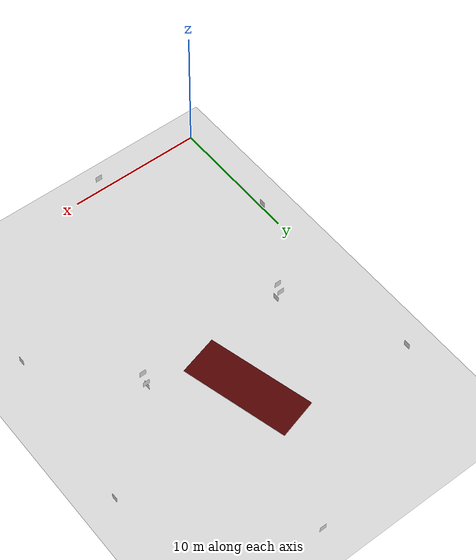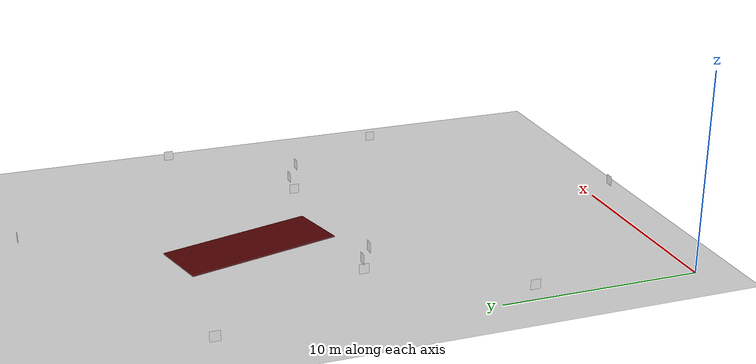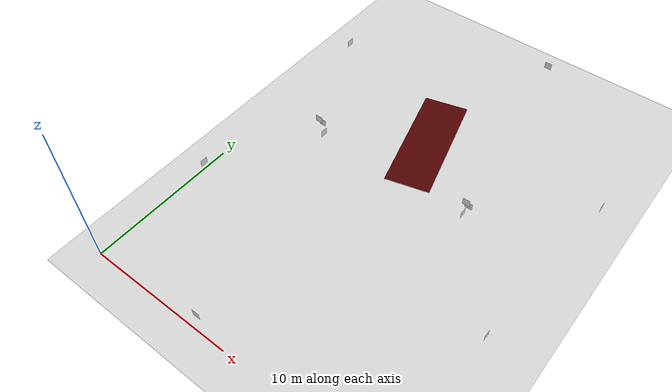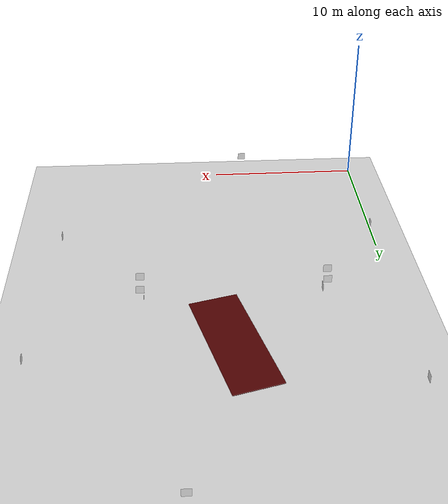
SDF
<sdf version="1.6">
 <world name="default">
  <light name="sun" type="directional">
   <pose>0 0 10 0 -0 0</pose>
   <diffuse>0.8 0.8 0.8 1</diffuse>
   <specular>0.1 0.1 0.1 1</specular>
   <attenuation>
    <range>1000</range>
    <constant>0.9</constant>
    <linear>0.01</linear>
    <quadratic>0.001</quadratic>
   </attenuation>
   <direction>-0.5 0.5 -1</direction>
  </light>
  <model name="ground_plane">
   <static>1</static>
   <link name="link">
    <collision name="collision">
     <geometry><plane><normal>0 0 1</normal><size>100 100</size></plane></geometry>
     <surface><friction><ode><mu>100</mu><mu2>50</mu2></ode></friction></surface>
    </collision>
    <visual name="visual">
     <cast_shadows>0</cast_shadows>
     <geometry><plane><normal>0 0 1</normal><size>100 100</size></plane></geometry>
     <material>
      <script><uri>file://media/materials/scripts/gazebo.material</uri><name>Gazebo/Grey</name></script>
     </material>
    </visual>
   </link>
  </model>
  <gravity>0 0 -9.8</gravity>
  <magnetic_field>6e-06 2.3e-05 -4.2e-05</magnetic_field>
  <atmosphere type="adiabatic"/>
  <physics name="default_physics" default="0" type="ode">
   <max_step_size>0.001</max_step_size>
   <real_time_factor>1</real_time_factor>
   <real_time_update_rate>1000</real_time_update_rate>
  </physics>
  <scene><ambient>0.4 0.4 0.4 1</ambient><background>0.7 0.7 0.7 1</background><shadows>1</shadows></scene>
  <spherical_coordinates>
   <surface_model>EARTH_WGS84</surface_model>
   <latitude_deg>0</latitude_deg>
   <longitude_deg>0</longitude_deg>
   <elevation>0</elevation>
   <heading_deg>0</heading_deg>
  </spherical_coordinates>
  <model name="aruco_visual_marker_0">
   <link name="marker">
    <visual name="visual">
     <geometry><box><size>0.5 0.5 1e-05</size></box></geometry>
     <material>
      <script>
       <uri>model://aruco_visual_marker_0/materials/scripts</uri>
       <uri>model://aruco_visual_marker_0/materials/textures</uri>
       <name>ArucoVisualMarker0/Marker</name>
      </script>
      <ambient>1 1 1 1</ambient>
      <diffuse>1 1 1 1</diffuse>
      <specular>0 0 0 1</specular>
      <emissive>1 1 1 0</emissive>
      <shader type="vertex"><normal_map>__default__</normal_map></shader>
     </material>
    </visual>
    <collision name="collision"><geometry><box><size>0.5 0.5 1e-05</size></box></geometry></collision>
   </link>
   <link name="marker_pad">
    <pose frame="marker">0 0 -1e-05 0 -0 0</pose>
    <visual name="visual">
     <geometry><box><size>1e-05 1e-05 1e-05</size></box></geometry>
     <material>
      <lighting>1</lighting>
      <script><uri>file://media/materials/scripts/gazebo.material</uri><name>Gazebo/White</name></script>
      <ambient>0.3 0.3 0.3 1</ambient>
      <diffuse>0.7 0.7 0.7 1</diffuse>
      <specular>0.01 0.01 0.01 1</specular>
      <emissive>1 1 1 0</emissive>
      <shader type="vertex"><normal_map>__default__</normal_map></shader>
     </material>
    </visual>
    <collision name="collision"><geometry><box><size>0.5 0.5 1e-05</size></box></geometry></collision>
   </link>
   <joint name="marker_JOINT_marker_pad" type="revolute">
    <parent>marker</parent>
    <child>marker_pad</child>
    <axis>
     <xyz>0 0 1</xyz>
     <limit><upper>0</upper><lower>0</lower></limit>
     <use_parent_model_frame>0</use_parent_model_frame>
     <dynamics><spring_reference>0</spring_reference><spring_stiffness>0</spring_stiffness></dynamics>
    </axis>
   </joint>
   <static>1</static>
   <pose>8.15376 0.164558 1.62223 1.57079 -1.57079 3.14159</pose>
  </model>
  <model name="aruco_visual_marker_1">
   <link name="marker">
    <visual name="visual">
     <geometry><box><size>0.5 0.5 1e-05</size></box></geometry>
     <material>
      <script>
       <uri>model://aruco_visual_marker_1/materials/scripts</uri>
       <uri>model://aruco_visual_marker_1/materials/textures</uri>
       <name>ArucoVisualMarker1/Marker</name>
      </script>
      <ambient>1 1 1 1</ambient>
      <diffuse>1 1 1 1</diffuse>
      <specular>0 0 0 1</specular>
      <emissive>1 1 1 0</emissive>
      <shader type="vertex"><normal_map>__default__</normal_map></shader>
     </material>
    </visual>
    <collision name="collision"><geometry><box><size>0.5 0.5 1e-05</size></box></geometry></collision>
   </link>
   <link name="marker_pad">
    <pose frame="marker">0 0 -1e-05 0 -0 0</pose>
    <visual name="visual">
     <geometry><box><size>1e-05 1e-05 1e-05</size></box></geometry>
     <material>
      <lighting>1</lighting>
      <script><uri>file://media/materials/scripts/gazebo.material</uri><name>Gazebo/White</name></script>
      <ambient>0.3 0.3 0.3 1</ambient>
      <diffuse>0.7 0.7 0.7 1</diffuse>
      <specular>0.01 0.01 0.01 1</specular>
      <emissive>1 1 1 0</emissive>
      <shader type="vertex"><normal_map>__default__</normal_map></shader>
     </material>
    </visual>
    <collision name="collision"><geometry><box><size>0.5 0.5 1e-05</size></box></geometry></collision>
   </link>
   <joint name="marker_JOINT_marker_pad" type="revolute">
    <parent>marker</parent>
    <child>marker_pad</child>
    <axis>
     <xyz>0 0 1</xyz>
     <limit><upper>0</upper><lower>0</lower></limit>
     <use_parent_model_frame>0</use_parent_model_frame>
     <dynamics><spring_reference>0</spring_reference><spring_stiffness>0</spring_stiffness></dynamics>
    </axis>
   </joint>
   <static>1</static>
   <pose>20.5402 8.87369 0.783528 -3.14159 -1.57079 -3.14159</pose>
  </model>
  <model name="aruco_visual_marker_2">
   <link name="marker">
    <visual name="visual">
     <geometry><box><size>0.5 0.5 1e-05</size></box></geometry>
     <material>
      <script>
       <uri>model://aruco_visual_marker_2/materials/scripts</uri>
       <uri>model://aruco_visual_marker_2/materials/textures</uri>
       <name>ArucoVisualMarker2/Marker</name>
      </script>
      <ambient>1 1 1 1</ambient>
      <diffuse>1 1 1 1</diffuse>
      <specular>0 0 0 1</specular>
      <emissive>1 1 1 0</emissive>
      <shader type="vertex"><normal_map>__default__</normal_map></shader>
     </material>
    </visual>
    <collision name="collision"><geometry><box><size>0.5 0.5 1e-05</size></box></geometry></collision>
   </link>
   <link name="marker_pad">
    <pose frame="marker">0 0 -1e-05 0 -0 0</pose>
    <visual name="visual">
     <geometry><box><size>1e-05 1e-05 1e-05</size></box></geometry>
     <material>
      <lighting>1</lighting>
      <script><uri>file://media/materials/scripts/gazebo.material</uri><name>Gazebo/White</name></script>
      <ambient>0.3 0.3 0.3 1</ambient>
      <diffuse>0.7 0.7 0.7 1</diffuse>
      <specular>0.01 0.01 0.01 1</specular>
      <emissive>1 1 1 0</emissive>
      <shader type="vertex"><normal_map>__default__</normal_map></shader>
     </material>
    </visual>
    <collision name="collision"><geometry><box><size>0.5 0.5 1e-05</size></box></geometry></collision>
   </link>
   <joint name="marker_JOINT_marker_pad" type="revolute">
    <parent>marker</parent>
    <child>marker_pad</child>
    <axis>
     <xyz>0 0 1</xyz>
     <limit><upper>0</upper><lower>0</lower></limit>
     <use_parent_model_frame>0</use_parent_model_frame>
     <dynamics><spring_reference>0</spring_reference><spring_stiffness>0</spring_stiffness></dynamics>
    </axis>
   </joint>
   <static>1</static>
   <pose>4.40399 15.0522 0.644692 -3e-06 -1.57079 3.14159</pose>
  </model>
  <model name="aruco_visual_marker_3">
   <link name="marker">
    <visual name="visual">
     <geometry><box><size>0.5 0.5 1e-05</size></box></geometry>
     <material>
      <script>
       <uri>model://aruco_visual_marker_3/materials/scripts</uri>
       <uri>model://aruco_visual_marker_3/materials/textures</uri>
       <name>ArucoVisualMarker3/Marker</name>
      </script>
      <ambient>1 1 1 1</ambient>
      <diffuse>1 1 1 1</diffuse>
      <specular>0 0 0 1</specular>
      <emissive>1 1 1 0</emissive>
      <shader type="vertex"><normal_map>__default__</normal_map></shader>
     </material>
    </visual>
    <collision name="collision"><geometry><box><size>0.5 0.5 1e-05</size></box></geometry></collision>
   </link>
   <link name="marker_pad">
    <pose frame="marker">0 0 -1e-05 0 -0 0</pose>
    <visual name="visual">
     <geometry><box><size>1e-05 1e-05 1e-05</size></box></geometry>
     <material>
      <lighting>1</lighting>
      <script><uri>file://media/materials/scripts/gazebo.material</uri><name>Gazebo/White</name></script>
      <ambient>0.3 0.3 0.3 1</ambient>
      <diffuse>0.7 0.7 0.7 1</diffuse>
      <specular>0.01 0.01 0.01 1</specular>
      <emissive>1 1 1 0</emissive>
      <shader type="vertex"><normal_map>__default__</normal_map></shader>
     </material>
    </visual>
    <collision name="collision"><geometry><box><size>0.5 0.5 1e-05</size></box></geometry></collision>
   </link>
   <joint name="marker_JOINT_marker_pad" type="revolute">
    <parent>marker</parent>
    <child>marker_pad</child>
    <axis>
     <xyz>0 0 1</xyz>
     <limit><upper>0</upper><lower>0</lower></limit>
     <use_parent_model_frame>0</use_parent_model_frame>
     <dynamics><spring_reference>0</spring_reference><spring_stiffness>0</spring_stiffness></dynamics>
    </axis>
   </joint>
   <static>1</static>
   <pose>12.9422 29.8823 0.785652 -1.57554 -1.57079 -3.13686</pose>
  </model>
  <model name="aruco_visual_marker_4">
   <link name="marker">
    <visual name="visual">
     <geometry><box><size>0.5 0.5 1e-05</size></box></geometry>
     <material>
      <script>
       <uri>model://aruco_visual_marker_4/materials/scripts</uri>
       <uri>model://aruco_visual_marker_4/materials/textures</uri>
       <name>ArucoVisualMarker4/Marker</name>
      </script>
      <ambient>1 1 1 1</ambient>
      <diffuse>1 1 1 1</diffuse>
      <specular>0 0 0 1</specular>
      <emissive>1 1 1 0</emissive>
      <shader type="vertex"><normal_map>__default__</normal_map></shader>
     </material>
    </visual>
    <collision name="collision"><geometry><box><size>0.5 0.5 1e-05</size></box></geometry></collision>
   </link>
   <link name="marker_pad">
    <pose frame="marker">0 0 -1e-05 0 -0 0</pose>
    <visual name="visual">
     <geometry><box><size>1e-05 1e-05 1e-05</size></box></geometry>
     <material>
      <lighting>1</lighting>
      <script><uri>file://media/materials/scripts/gazebo.material</uri><name>Gazebo/White</name></script>
      <ambient>0.3 0.3 0.3 1</ambient>
      <diffuse>0.7 0.7 0.7 1</diffuse>
      <specular>0.01 0.01 0.01 1</specular>
      <emissive>1 1 1 0</emissive>
      <shader type="vertex"><normal_map>__default__</normal_map></shader>
     </material>
    </visual>
    <collision name="collision"><geometry><box><size>0.5 0.5 1e-05</size></box></geometry></collision>
   </link>
   <joint name="marker_JOINT_marker_pad" type="revolute">
    <parent>marker</parent>
    <child>marker_pad</child>
    <axis>
     <xyz>0 0 1</xyz>
     <limit><upper>0</upper><lower>0</lower></limit>
     <use_parent_model_frame>0</use_parent_model_frame>
     <dynamics><spring_reference>0</spring_reference><spring_stiffness>0</spring_stiffness></dynamics>
    </axis>
   </joint>
   <static>1</static>
   <pose>0.149435 23.2488 0.777007 -3e-06 -1.57079 3.14159</pose>
  </model>
  <model name="aruco_visual_marker_5">
   <link name="marker">
    <visual name="visual">
     <geometry><box><size>0.5 0.5 1e-05</size></box></geometry>
     <material>
      <script>
       <uri>model://aruco_visual_marker_5/materials/scripts</uri>
       <uri>model://aruco_visual_marker_5/materials/textures</uri>
       <name>ArucoVisualMarker5/Marker</name>
      </script>
      <ambient>1 1 1 1</ambient>
      <diffuse>1 1 1 1</diffuse>
      <specular>0 0 0 1</specular>
      <emissive>1 1 1 0</emissive>
      <shader type="vertex"><normal_map>__default__</normal_map></shader>
     </material>
    </visual>
    <collision name="collision"><geometry><box><size>0.5 0.5 1e-05</size></box></geometry></collision>
   </link>
   <link name="marker_pad">
    <pose frame="marker">0 0 -1e-05 0 -0 0</pose>
    <visual name="visual">
     <geometry><box><size>1e-05 1e-05 1e-05</size></box></geometry>
     <material>
      <lighting>1</lighting>
      <script><uri>file://media/materials/scripts/gazebo.material</uri><name>Gazebo/White</name></script>
      <ambient>0.3 0.3 0.3 1</ambient>
      <diffuse>0.7 0.7 0.7 1</diffuse>
      <specular>0.01 0.01 0.01 1</specular>
      <emissive>1 1 1 0</emissive>
      <shader type="vertex"><normal_map>__default__</normal_map></shader>
     </material>
    </visual>
    <collision name="collision"><geometry><box><size>0.5 0.5 1e-05</size></box></geometry></collision>
   </link>
   <joint name="marker_JOINT_marker_pad" type="revolute">
    <parent>marker</parent>
    <child>marker_pad</child>
    <axis>
     <xyz>0 0 1</xyz>
     <limit><upper>0</upper><lower>0</lower></limit>
     <use_parent_model_frame>0</use_parent_model_frame>
     <dynamics><spring_reference>0</spring_reference><spring_stiffness>0</spring_stiffness></dynamics>
    </axis>
   </joint>
   <static>1</static>
   <pose>21.5677 20.5062 0.677542 3.14159 -1.57079 3.14159</pose>
  </model>
  <model name="aruco_visual_marker_6">
   <link name="marker">
    <visual name="visual">
     <geometry><box><size>0.5 0.5 1e-05</size></box></geometry>
     <material>
      <script>
       <uri>model://aruco_visual_marker_6/materials/scripts</uri>
       <uri>model://aruco_visual_marker_6/materials/textures</uri>
       <name>ArucoVisualMarker6/Marker</name>
      </script>
      <ambient>1 1 1 1</ambient>
      <diffuse>1 1 1 1</diffuse>
      <specular>0 0 0 1</specular>
      <emissive>1 1 1 0</emissive>
      <shader type="vertex"><normal_map>__default__</normal_map></shader>
     </material>
    </visual>
    <collision name="collision"><geometry><box><size>0.5 0.5 1e-05</size></box></geometry></collision>
   </link>
   <link name="marker_pad">
    <pose frame="marker">0 0 -1e-05 0 -0 0</pose>
    <visual name="visual">
     <geometry><box><size>1e-05 1e-05 1e-05</size></box></geometry>
     <material>
      <lighting>1</lighting>
      <script><uri>file://media/materials/scripts/gazebo.material</uri><name>Gazebo/White</name></script>
      <ambient>0.3 0.3 0.3 1</ambient>
      <diffuse>0.7 0.7 0.7 1</diffuse>
      <specular>0.01 0.01 0.01 1</specular>
      <emissive>1 1 1 0</emissive>
      <shader type="vertex"><normal_map>__default__</normal_map></shader>
     </material>
    </visual>
    <collision name="collision"><geometry><box><size>0.5 0.5 1e-05</size></box></geometry></collision>
   </link>
   <joint name="marker_JOINT_marker_pad" type="revolute">
    <parent>marker</parent>
    <child>marker_pad</child>
    <axis>
     <xyz>0 0 1</xyz>
     <limit><upper>0</upper><lower>0</lower></limit>
     <use_parent_model_frame>0</use_parent_model_frame>
     <dynamics><spring_reference>0</spring_reference><spring_stiffness>0</spring_stiffness></dynamics>
    </axis>
   </joint>
   <static>1</static>
   <pose>0.122395 8.33121 0.739884 -3e-06 -1.57079 3.14159</pose>
  </model>
  <model name="aruco_visual_marker_7">
   <link name="marker">
    <visual name="visual">
     <geometry><box><size>0.5 0.5 1e-05</size></box></geometry>
     <material>
      <script>
       <uri>model://aruco_visual_marker_7/materials/scripts</uri>
       <uri>model://aruco_visual_marker_7/materials/textures</uri>
       <name>ArucoVisualMarker7/Marker</name>
      </script>
      <ambient>1 1 1 1</ambient>
      <diffuse>1 1 1 1</diffuse>
      <specular>0 0 0 1</specular>
      <emissive>1 1 1 0</emissive>
      <shader type="vertex"><normal_map>__default__</normal_map></shader>
     </material>
    </visual>
    <collision name="collision"><geometry><box><size>0.5 0.5 1e-05</size></box></geometry></collision>
   </link>
   <link name="marker_pad">
    <pose frame="marker">0 0 -1e-05 0 -0 0</pose>
    <visual name="visual">
     <geometry><box><size>1e-05 1e-05 1e-05</size></box></geometry>
     <material>
      <lighting>1</lighting>
      <script><uri>file://media/materials/scripts/gazebo.material</uri><name>Gazebo/White</name></script>
      <ambient>0.3 0.3 0.3 1</ambient>
      <diffuse>0.7 0.7 0.7 1</diffuse>
      <specular>0.01 0.01 0.01 1</specular>
      <emissive>1 1 1 0</emissive>
      <shader type="vertex"><normal_map>__default__</normal_map></shader>
     </material>
    </visual>
    <collision name="collision"><geometry><box><size>0.5 0.5 1e-05</size></box></geometry></collision>
   </link>
   <joint name="marker_JOINT_marker_pad" type="revolute">
    <parent>marker</parent>
    <child>marker_pad</child>
    <axis>
     <xyz>0 0 1</xyz>
     <limit><upper>0</upper><lower>0</lower></limit>
     <use_parent_model_frame>0</use_parent_model_frame>
     <dynamics><spring_reference>0</spring_reference><spring_stiffness>0</spring_stiffness></dynamics>
    </axis>
   </joint>
   <static>1</static>
   <pose>15.1454 15.1353 0.462324 3.14159 -1.57079 3.14159</pose>
  </model>
  <model name="empty"><pose>0 0 0.01 0 -0 0</pose></model>
  <model name="chapa__3">
   <link name="link">
    <inertial>
     <mass>30</mass>
     <inertia>
      <ixx>0.166667</ixx>
      <ixy>0</ixy>
      <ixz>0</ixz>
      <iyy>0.166667</iyy>
      <iyz>0</iyz>
      <izz>0.166667</izz>
     </inertia>
    </inertial>
    <visual name="visual">
     <geometry><box><size>3 8 0.059693</size></box></geometry>
     <material>
      <script><name>Gazebo/Grey</name><uri>file://media/materials/scripts/gazebo.material</uri></script>
      <ambient>0.3 0 0 1</ambient>
      <diffuse>0.1 0.1 0.1 1</diffuse>
      <specular>0.3 0 0 1</specular>
      <emissive>0 0 0 1</emissive>
      <shader type="vertex"><normal_map>__default__</normal_map></shader>
     </material>
    </visual>
    <collision name="collision">
     <max_contacts>100</max_contacts>
     <geometry><box><size>3.28456 7.99272 0.019693</size></box></geometry>
     <surface>
      <contact>
       <collide_without_contact>0</collide_without_contact>
       <collide_without_contact_bitmask>0</collide_without_contact_bitmask>
       <collide_bitmask>0</collide_bitmask>
      </contact>
     </surface>
    </collision>
   </link>
   <static>1</static>
   <pose>10 19 0.009846 0 -0 0.2618</pose>
  </model>
  <model name="aruco_visual_marker_8">
   <link name="marker">
    <visual name="visual">
     <geometry><box><size>0.5 0.5 1e-05</size></box></geometry>
     <material>
      <script>
       <uri>model://aruco_visual_marker_8/materials/scripts</uri>
       <uri>model://aruco_visual_marker_8/materials/textures</uri>
       <name>ArucoVisualMarker8/Marker</name>
      </script>
      <ambient>1 1 1 1</ambient>
      <diffuse>1 1 1 1</diffuse>
      <specular>0 0 0 1</specular>
      <emissive>1 1 1 0</emissive>
      <shader type="vertex"><normal_map>__default__</normal_map></shader>
     </material>
    </visual>
    <collision name="collision"><geometry><box><size>0.5 0.5 1e-05</size></box></geometry></collision>
   </link>
   <link name="marker_pad">
    <pose frame="marker">0 0 -1e-05 0 -0 0</pose>
    <visual name="visual">
     <geometry><box><size>1e-05 1e-05 1e-05</size></box></geometry>
     <material>
      <lighting>1</lighting>
      <script><uri>file://media/materials/scripts/gazebo.material</uri><name>Gazebo/White</name></script>
      <ambient>0.3 0.3 0.3 1</ambient>
      <diffuse>0.7 0.7 0.7 1</diffuse>
      <specular>0.01 0.01 0.01 1</specular>
      <emissive>1 1 1 0</emissive>
      <shader type="vertex"><normal_map>__default__</normal_map></shader>
     </material>
    </visual>
    <collision name="collision"><geometry><box><size>0.5 0.5 1e-05</size></box></geometry></collision>
   </link>
   <joint name="marker_JOINT_marker_pad" type="revolute">
    <parent>marker</parent>
    <child>marker_pad</child>
    <axis>
     <xyz>0 0 1</xyz>
     <limit><upper>0</upper><lower>0</lower></limit>
     <use_parent_model_frame>0</use_parent_model_frame>
     <dynamics><spring_reference>0</spring_reference><spring_stiffness>0</spring_stiffness></dynamics>
    </axis>
   </joint>
   <static>1</static>
   <pose>4.17888 14.9036 1.86224 -1.57554 -1.57079 -3.13686</pose>
  </model>
  <model name="aruco_visual_marker_9">
   <link name="marker">
    <visual name="visual">
     <geometry><box><size>0.5 0.5 1e-05</size></box></geometry>
     <material>
      <script>
       <uri>model://aruco_visual_marker_9/materials/scripts</uri>
       <uri>model://aruco_visual_marker_9/materials/textures</uri>
       <name>ArucoVisualMarker9/Marker</name>
      </script>
      <ambient>1 1 1 1</ambient>
      <diffuse>1 1 1 1</diffuse>
      <specular>0 0 0 1</specular>
      <emissive>1 1 1 0</emissive>
      <shader type="vertex"><normal_map>__default__</normal_map></shader>
     </material>
    </visual>
    <collision name="collision"><geometry><box><size>0.5 0.5 1e-05</size></box></geometry></collision>
   </link>
   <link name="marker_pad">
    <pose frame="marker">0 0 -1e-05 0 -0 0</pose>
    <visual name="visual">
     <geometry><box><size>1e-05 1e-05 1e-05</size></box></geometry>
     <material>
      <lighting>1</lighting>
      <script><uri>file://media/materials/scripts/gazebo.material</uri><name>Gazebo/White</name></script>
      <ambient>0.3 0.3 0.3 1</ambient>
      <diffuse>0.7 0.7 0.7 1</diffuse>
      <specular>0.01 0.01 0.01 1</specular>
      <emissive>1 1 1 0</emissive>
      <shader type="vertex"><normal_map>__default__</normal_map></shader>
     </material>
    </visual>
    <collision name="collision"><geometry><box><size>0.5 0.5 1e-05</size></box></geometry></collision>
   </link>
   <joint name="marker_JOINT_marker_pad" type="revolute">
    <parent>marker</parent>
    <child>marker_pad</child>
    <axis>
     <xyz>0 0 1</xyz>
     <limit><upper>0</upper><lower>0</lower></limit>
     <use_parent_model_frame>0</use_parent_model_frame>
     <dynamics><spring_reference>0</spring_reference><spring_stiffness>0</spring_stiffness></dynamics>
    </axis>
   </joint>
   <static>1</static>
   <pose>4.1797 15.2269 1.31685 1.57079 -1.57079 3.14159</pose>
  </model>
  <model name="aruco_visual_marker_10">
   <link name="marker">
    <visual name="visual">
     <geometry><box><size>0.5 0.5 1e-05</size></box></geometry>
     <material>
      <script>
       <uri>model://aruco_visual_marker_10/materials/scripts</uri>
       <uri>model://aruco_visual_marker_10/materials/textures</uri>
       <name>ArucoVisualMarker10/Marker</name>
      </script>
      <ambient>1 1 1 1</ambient>
      <diffuse>1 1 1 1</diffuse>
      <specular>0 0 0 1</specular>
      <emissive>1 1 1 0</emissive>
      <shader type="vertex"><normal_map>__default__</normal_map></shader>
     </material>
    </visual>
    <collision name="collision"><geometry><box><size>0.5 0.5 1e-05</size></box></geometry></collision>
   </link>
   <link name="marker_pad">
    <pose frame="marker">0 0 -1e-05 0 -0 0</pose>
    <visual name="visual">
     <geometry><box><size>1e-05 1e-05 1e-05</size></box></geometry>
     <material>
      <lighting>1</lighting>
      <script><uri>file://media/materials/scripts/gazebo.material</uri><name>Gazebo/White</name></script>
      <ambient>0.3 0.3 0.3 1</ambient>
      <diffuse>0.7 0.7 0.7 1</diffuse>
      <specular>0.01 0.01 0.01 1</specular>
      <emissive>1 1 1 0</emissive>
      <shader type="vertex"><normal_map>__default__</normal_map></shader>
     </material>
    </visual>
    <collision name="collision"><geometry><box><size>0.5 0.5 1e-05</size></box></geometry></collision>
   </link>
   <joint name="marker_JOINT_marker_pad" type="revolute">
    <parent>marker</parent>
    <child>marker_pad</child>
    <axis>
     <xyz>0 0 1</xyz>
     <limit><upper>0</upper><lower>0</lower></limit>
     <use_parent_model_frame>0</use_parent_model_frame>
     <dynamics><spring_reference>0</spring_reference><spring_stiffness>0</spring_stiffness></dynamics>
    </axis>
   </joint>
   <static>1</static>
   <pose>15.3297 15.3438 1.10695 1.57079 -1.57079 3.14159</pose>
  </model>
  <model name="aruco_visual_marker_11">
   <link name="marker">
    <visual name="visual">
     <geometry><box><size>0.5 0.5 1e-05</size></box></geometry>
     <material>
      <script>
       <uri>model://aruco_visual_marker_11/materials/scripts</uri>
       <uri>model://aruco_visual_marker_11/materials/textures</uri>
       <name>ArucoVisualMarker11/Marker</name>
      </script>
      <ambient>1 1 1 1</ambient>
      <diffuse>1 1 1 1</diffuse>
      <specular>0 0 0 1</specular>
      <emissive>1 1 1 0</emissive>
      <shader type="vertex"><normal_map>__default__</normal_map></shader>
     </material>
    </visual>
    <collision name="collision"><geometry><box><size>0.5 0.5 1e-05</size></box></geometry></collision>
   </link>
   <link name="marker_pad">
    <pose frame="marker">0 0 -1e-05 0 -0 0</pose>
    <visual name="visual">
     <geometry><box><size>1e-05 1e-05 1e-05</size></box></geometry>
     <material>
      <lighting>1</lighting>
      <script><uri>file://media/materials/scripts/gazebo.material</uri><name>Gazebo/White</name></script>
      <ambient>0.3 0.3 0.3 1</ambient>
      <diffuse>0.7 0.7 0.7 1</diffuse>
      <specular>0.01 0.01 0.01 1</specular>
      <emissive>1 1 1 0</emissive>
      <shader type="vertex"><normal_map>__default__</normal_map></shader>
     </material>
    </visual>
    <collision name="collision"><geometry><box><size>0.5 0.5 1e-05</size></box></geometry></collision>
   </link>
   <joint name="marker_JOINT_marker_pad" type="revolute">
    <parent>marker</parent>
    <child>marker_pad</child>
    <axis>
     <xyz>0 0 1</xyz>
     <limit><upper>0</upper><lower>0</lower></limit>
     <use_parent_model_frame>0</use_parent_model_frame>
     <dynamics><spring_reference>0</spring_reference><spring_stiffness>0</spring_stiffness></dynamics>
    </axis>
   </joint>
   <static>1</static>
   <pose>15.3057 14.9732 1.77706 -1.57554 -1.57079 -3.13686</pose>
  </model>
 </world>
</sdf>
